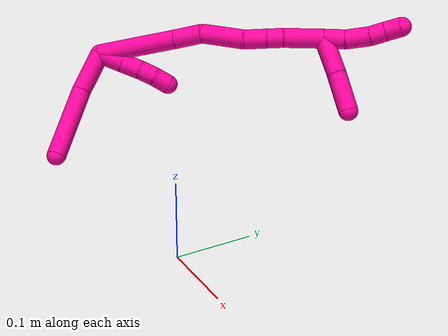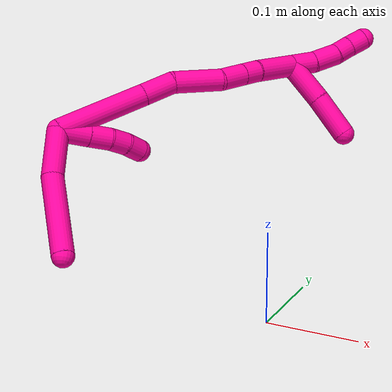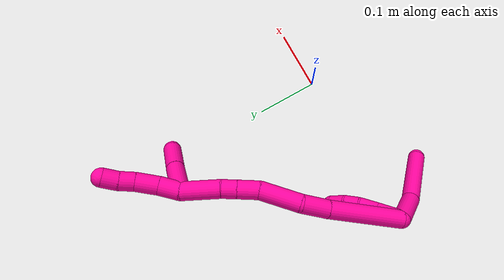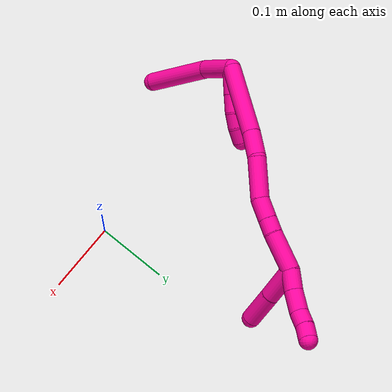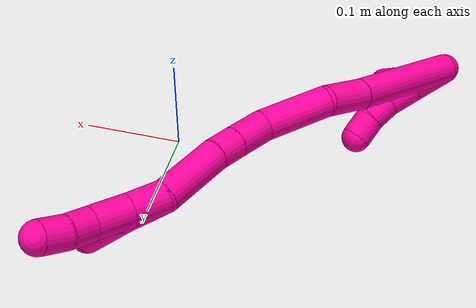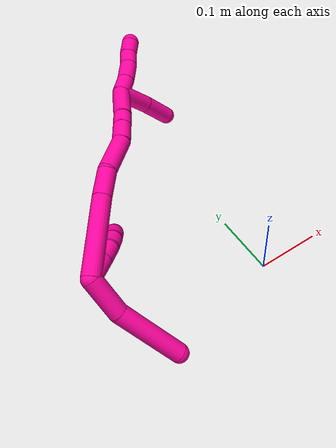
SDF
<sdf version="1.7">
 <world name="default">
  <model name="18">
   <static>0</static>
   <link name="18">
    <collision name="collision-cylinder-e_1_2_8">
     <pose>0.000643 -0.000397 -0.027251 3.12702 0.023571 2.034</pose>
     <geometry><cylinder><radius>0.0125</radius><length>0.054524</length></cylinder></geometry>
     <surface>
      <friction><ode><mu>1.16</mu><mu2>1.16</mu2><slip1>0</slip1><slip2>0</slip2></ode></friction>
      <contact><ode><kp>1e+06</kp><kd>1</kd><max_vel>0</max_vel><min_depth>0.001</min_depth></ode></contact>
     </surface>
    </collision>
    <visual name="visual-cylinder-e_1_2_8">
     <pose>0.000643 -0.000397 -0.027251 3.12702 0.023571 2.034</pose>
     <geometry><cylinder><radius>0.0125</radius><length>0.054524</length></cylinder></geometry>
     <material><ambient>1 0.007843 0.615686 1</ambient></material>
    </visual>
    <collision name="collision-cylinder-e_2_8_6">
     <pose>0.015453 -0.002251 -0.100067 3.10963 0.301322 2.93182</pose>
     <geometry><cylinder><radius>0.0125</radius><length>0.095476</length></cylinder></geometry>
     <surface>
      <friction><ode><mu>1.16</mu><mu2>1.16</mu2><slip1>0</slip1><slip2>0</slip2></ode></friction>
      <contact><ode><kp>1e+06</kp><kd>1</kd><max_vel>0</max_vel><min_depth>0.001</min_depth></ode></contact>
     </surface>
    </collision>
    <visual name="visual-cylinder-e_2_8_6">
     <pose>0.015453 -0.002251 -0.100067 3.10963 0.301322 2.93182</pose>
     <geometry><cylinder><radius>0.0125</radius><length>0.095476</length></cylinder></geometry>
     <material><ambient>1 0.007843 0.615686 1</ambient></material>
    </visual>
    <collision name="collision-cylinder-e_1_2_9">
     <pose>0.011048 0.013194 0.000812 -1.50933 0.696151 -0.657637</pose>
     <geometry><cylinder><radius>0.0125</radius><length>0.034455</length></cylinder></geometry>
     <surface>
      <friction><ode><mu>1.16</mu><mu2>1.16</mu2><slip1>0</slip1><slip2>0</slip2></ode></friction>
      <contact><ode><kp>1e+06</kp><kd>1</kd><max_vel>0</max_vel><min_depth>0.001</min_depth></ode></contact>
     </surface>
    </collision>
    <visual name="visual-cylinder-e_1_2_9">
     <pose>0.011048 0.013194 0.000812 -1.50933 0.696151 -0.657637</pose>
     <geometry><cylinder><radius>0.0125</radius><length>0.034455</length></cylinder></geometry>
     <material><ambient>1 0.007843 0.615686 1</ambient></material>
    </visual>
    <collision name="collision-cylinder-e_2_9_10">
     <pose>0.029901 0.035835 0.002402 -1.48864 0.6889 -0.638263</pose>
     <geometry><cylinder><radius>0.0125</radius><length>0.024558</length></cylinder></geometry>
     <surface>
      <friction><ode><mu>1.16</mu><mu2>1.16</mu2><slip1>0</slip1><slip2>0</slip2></ode></friction>
      <contact><ode><kp>1e+06</kp><kd>1</kd><max_vel>0</max_vel><min_depth>0.001</min_depth></ode></contact>
     </surface>
    </collision>
    <visual name="visual-cylinder-e_2_9_10">
     <pose>0.029901 0.035835 0.002402 -1.48864 0.6889 -0.638263</pose>
     <geometry><cylinder><radius>0.0125</radius><length>0.024558</length></cylinder></geometry>
     <material><ambient>1 0.007843 0.615686 1</ambient></material>
    </visual>
    <collision name="collision-cylinder-e_3_10_11">
     <pose>0.042513 0.054267 0.003365 -1.5502 0.491181 -0.481556</pose>
     <geometry><cylinder><radius>0.0125</radius><length>0.020384</length></cylinder></geometry>
     <surface>
      <friction><ode><mu>1.16</mu><mu2>1.16</mu2><slip1>0</slip1><slip2>0</slip2></ode></friction>
      <contact><ode><kp>1e+06</kp><kd>1</kd><max_vel>0</max_vel><min_depth>0.001</min_depth></ode></contact>
     </surface>
    </collision>
    <visual name="visual-cylinder-e_3_10_11">
     <pose>0.042513 0.054267 0.003365 -1.5502 0.491181 -0.481556</pose>
     <geometry><cylinder><radius>0.0125</radius><length>0.020384</length></cylinder></geometry>
     <material><ambient>1 0.007843 0.615686 1</ambient></material>
    </visual>
    <collision name="collision-cylinder-e_4_11_5">
     <pose>0.050279 0.07311 0.003121 -1.61422 0.291228 -0.303964</pose>
     <geometry><cylinder><radius>0.0125</radius><length>0.020603</length></cylinder></geometry>
     <surface>
      <friction><ode><mu>1.16</mu><mu2>1.16</mu2><slip1>0</slip1><slip2>0</slip2></ode></friction>
      <contact><ode><kp>1e+06</kp><kd>1</kd><max_vel>0</max_vel><min_depth>0.001</min_depth></ode></contact>
     </surface>
    </collision>
    <visual name="visual-cylinder-e_4_11_5">
     <pose>0.050279 0.07311 0.003121 -1.61422 0.291228 -0.303964</pose>
     <geometry><cylinder><radius>0.0125</radius><length>0.020603</length></cylinder></geometry>
     <material><ambient>1 0.007843 0.615686 1</ambient></material>
    </visual>
    <collision name="collision-cylinder-e_1_2_12">
     <pose>0.033425 0.028533 0.028633 -0.783652 0.690921 -0.295245</pose>
     <geometry><cylinder><radius>0.0125</radius><length>0.104905</length></cylinder></geometry>
     <surface>
      <friction><ode><mu>1.16</mu><mu2>1.16</mu2><slip1>0</slip1><slip2>0</slip2></ode></friction>
      <contact><ode><kp>1e+06</kp><kd>1</kd><max_vel>0</max_vel><min_depth>0.001</min_depth></ode></contact>
     </surface>
    </collision>
    <visual name="visual-cylinder-e_1_2_12">
     <pose>0.033425 0.028533 0.028633 -0.783652 0.690921 -0.295245</pose>
     <geometry><cylinder><radius>0.0125</radius><length>0.104905</length></cylinder></geometry>
     <material><ambient>1 0.007843 0.615686 1</ambient></material>
    </visual>
    <collision name="collision-cylinder-e_2_12_13">
     <pose>0.079663 0.066205 0.067185 -0.744464 0.759747 -0.309284</pose>
     <geometry><cylinder><radius>0.0125</radius><length>0.037205</length></cylinder></geometry>
     <surface>
      <friction><ode><mu>1.16</mu><mu2>1.16</mu2><slip1>0</slip1><slip2>0</slip2></ode></friction>
      <contact><ode><kp>1e+06</kp><kd>1</kd><max_vel>0</max_vel><min_depth>0.001</min_depth></ode></contact>
     </surface>
    </collision>
    <visual name="visual-cylinder-e_2_12_13">
     <pose>0.079663 0.066205 0.067185 -0.744464 0.759747 -0.309284</pose>
     <geometry><cylinder><radius>0.0125</radius><length>0.037205</length></cylinder></geometry>
     <material><ambient>1 0.007843 0.615686 1</ambient></material>
    </visual>
    <collision name="collision-cylinder-e_3_13_14">
     <pose>0.112612 0.093672 0.083993 -1.21131 0.799425 -0.569191</pose>
     <geometry><cylinder><radius>0.0125</radius><length>0.056172</length></cylinder></geometry>
     <surface>
      <friction><ode><mu>1.16</mu><mu2>1.16</mu2><slip1>0</slip1><slip2>0</slip2></ode></friction>
      <contact><ode><kp>1e+06</kp><kd>1</kd><max_vel>0</max_vel><min_depth>0.001</min_depth></ode></contact>
     </surface>
    </collision>
    <visual name="visual-cylinder-e_3_13_14">
     <pose>0.112612 0.093672 0.083993 -1.21131 0.799425 -0.569191</pose>
     <geometry><cylinder><radius>0.0125</radius><length>0.056172</length></cylinder></geometry>
     <material><ambient>1 0.007843 0.615686 1</ambient></material>
    </visual>
    <collision name="collision-cylinder-e_4_14_15">
     <pose>0.140533 0.122238 0.097578 -0.991514 0.566707 -0.312387</pose>
     <geometry><cylinder><radius>0.0125</radius><length>0.029002</length></cylinder></geometry>
     <surface>
      <friction><ode><mu>1.16</mu><mu2>1.16</mu2><slip1>0</slip1><slip2>0</slip2></ode></friction>
      <contact><ode><kp>1e+06</kp><kd>1</kd><max_vel>0</max_vel><min_depth>0.001</min_depth></ode></contact>
     </surface>
    </collision>
    <visual name="visual-cylinder-e_4_14_15">
     <pose>0.140533 0.122238 0.097578 -0.991514 0.566707 -0.312387</pose>
     <geometry><cylinder><radius>0.0125</radius><length>0.029002</length></cylinder></geometry>
     <material><ambient>1 0.007843 0.615686 1</ambient></material>
    </visual>
    <collision name="collision-cylinder-e_5_15_16">
     <pose>0.153696 0.13969 0.108938 -0.997007 0.559427 -0.310217</pose>
     <geometry><cylinder><radius>0.0125</radius><length>0.02027</length></cylinder></geometry>
     <surface>
      <friction><ode><mu>1.16</mu><mu2>1.16</mu2><slip1>0</slip1><slip2>0</slip2></ode></friction>
      <contact><ode><kp>1e+06</kp><kd>1</kd><max_vel>0</max_vel><min_depth>0.001</min_depth></ode></contact>
     </surface>
    </collision>
    <visual name="visual-cylinder-e_5_15_16">
     <pose>0.153696 0.13969 0.108938 -0.997007 0.559427 -0.310217</pose>
     <geometry><cylinder><radius>0.0125</radius><length>0.02027</length></cylinder></geometry>
     <material><ambient>1 0.007843 0.615686 1</ambient></material>
    </visual>
    <collision name="collision-cylinder-e_6_16_1">
     <pose>0.170495 0.167698 0.124775 -1.07769 0.450593 -0.272347</pose>
     <geometry><cylinder><radius>0.0125</radius><length>0.052446</length></cylinder></geometry>
     <surface>
      <friction><ode><mu>1.16</mu><mu2>1.16</mu2><slip1>0</slip1><slip2>0</slip2></ode></friction>
      <contact><ode><kp>1e+06</kp><kd>1</kd><max_vel>0</max_vel><min_depth>0.001</min_depth></ode></contact>
     </surface>
    </collision>
    <visual name="visual-cylinder-e_6_16_1">
     <pose>0.170495 0.167698 0.124775 -1.07769 0.450593 -0.272347</pose>
     <geometry><cylinder><radius>0.0125</radius><length>0.052446</length></cylinder></geometry>
     <material><ambient>1 0.007843 0.615686 1</ambient></material>
    </visual>
    <collision name="collision-cylinder-e_1_1_17">
     <pose>0.191742 0.197393 0.140858 -1.06684 0.768454 -0.468744</pose>
     <geometry><cylinder><radius>0.0125</radius><length>0.028279</length></cylinder></geometry>
     <surface>
      <friction><ode><mu>1.16</mu><mu2>1.16</mu2><slip1>0</slip1><slip2>0</slip2></ode></friction>
      <contact><ode><kp>1e+06</kp><kd>1</kd><max_vel>0</max_vel><min_depth>0.001</min_depth></ode></contact>
     </surface>
    </collision>
    <visual name="visual-cylinder-e_1_1_17">
     <pose>0.191742 0.197393 0.140858 -1.06684 0.768454 -0.468744</pose>
     <geometry><cylinder><radius>0.0125</radius><length>0.028279</length></cylinder></geometry>
     <material><ambient>1 0.007843 0.615686 1</ambient></material>
    </visual>
    <collision name="collision-cylinder-e_2_17_18">
     <pose>0.211646 0.214992 0.153447 -0.847391 0.715133 -0.333885</pose>
     <geometry><cylinder><radius>0.0125</radius><length>0.030735</length></cylinder></geometry>
     <surface>
      <friction><ode><mu>1.16</mu><mu2>1.16</mu2><slip1>0</slip1><slip2>0</slip2></ode></friction>
      <contact><ode><kp>1e+06</kp><kd>1</kd><max_vel>0</max_vel><min_depth>0.001</min_depth></ode></contact>
     </surface>
    </collision>
    <visual name="visual-cylinder-e_2_17_18">
     <pose>0.211646 0.214992 0.153447 -0.847391 0.715133 -0.333885</pose>
     <geometry><cylinder><radius>0.0125</radius><length>0.030735</length></cylinder></geometry>
     <material><ambient>1 0.007843 0.615686 1</ambient></material>
    </visual>
    <collision name="collision-cylinder-e_3_18_19">
     <pose>0.227422 0.228837 0.167627 -0.669863 0.602186 -0.215324</pose>
     <geometry><cylinder><radius>0.0125</radius><length>0.020121</length></cylinder></geometry>
     <surface>
      <friction><ode><mu>1.16</mu><mu2>1.16</mu2><slip1>0</slip1><slip2>0</slip2></ode></friction>
      <contact><ode><kp>1e+06</kp><kd>1</kd><max_vel>0</max_vel><min_depth>0.001</min_depth></ode></contact>
     </surface>
    </collision>
    <visual name="visual-cylinder-e_3_18_19">
     <pose>0.227422 0.228837 0.167627 -0.669863 0.602186 -0.215324</pose>
     <geometry><cylinder><radius>0.0125</radius><length>0.020121</length></cylinder></geometry>
     <material><ambient>1 0.007843 0.615686 1</ambient></material>
    </visual>
    <collision name="collision-cylinder-e_4_19_4">
     <pose>0.240322 0.238426 0.180229 -0.629163 0.761842 -0.259162</pose>
     <geometry><cylinder><radius>0.0125</radius><length>0.020865</length></cylinder></geometry>
     <surface>
      <friction><ode><mu>1.16</mu><mu2>1.16</mu2><slip1>0</slip1><slip2>0</slip2></ode></friction>
      <contact><ode><kp>1e+06</kp><kd>1</kd><max_vel>0</max_vel><min_depth>0.001</min_depth></ode></contact>
     </surface>
    </collision>
    <visual name="visual-cylinder-e_4_19_4">
     <pose>0.240322 0.238426 0.180229 -0.629163 0.761842 -0.259162</pose>
     <geometry><cylinder><radius>0.0125</radius><length>0.020865</length></cylinder></geometry>
     <material><ambient>1 0.007843 0.615686 1</ambient></material>
    </visual>
    <collision name="collision-cylinder-e_1_1_20">
     <pose>0.194992 0.200342 0.118034 -2.55716 0.546881 -1.50076</pose>
     <geometry><cylinder><radius>0.0125</radius><length>0.050294</length></cylinder></geometry>
     <surface>
      <friction><ode><mu>1.16</mu><mu2>1.16</mu2><slip1>0</slip1><slip2>0</slip2></ode></friction>
      <contact><ode><kp>1e+06</kp><kd>1</kd><max_vel>0</max_vel><min_depth>0.001</min_depth></ode></contact>
     </surface>
    </collision>
    <visual name="visual-cylinder-e_1_1_20">
     <pose>0.194992 0.200342 0.118034 -2.55716 0.546881 -1.50076</pose>
     <geometry><cylinder><radius>0.0125</radius><length>0.050294</length></cylinder></geometry>
     <material><ambient>1 0.007843 0.615686 1</ambient></material>
    </visual>
    <collision name="collision-cylinder-e_2_20_3">
     <pose>0.219755 0.224012 0.081642 -2.57253 0.489508 -1.41361</pose>
     <geometry><cylinder><radius>0.0125</radius><length>0.049706</length></cylinder></geometry>
     <surface>
      <friction><ode><mu>1.16</mu><mu2>1.16</mu2><slip1>0</slip1><slip2>0</slip2></ode></friction>
      <contact><ode><kp>1e+06</kp><kd>1</kd><max_vel>0</max_vel><min_depth>0.001</min_depth></ode></contact>
     </surface>
    </collision>
    <visual name="visual-cylinder-e_2_20_3">
     <pose>0.219755 0.224012 0.081642 -2.57253 0.489508 -1.41361</pose>
     <geometry><cylinder><radius>0.0125</radius><length>0.049706</length></cylinder></geometry>
     <material><ambient>1 0.007843 0.615686 1</ambient></material>
    </visual>
    <collision name="collision-sphere-3">
     <pose>0.231441 0.235831 0.063165 0 -0 0</pose>
     <geometry><sphere><radius>0.0125</radius></sphere></geometry>
     <surface>
      <friction><ode><mu>1.16</mu><mu2>1.16</mu2><slip1>0</slip1><slip2>0</slip2></ode></friction>
      <contact><ode><kp>1e+06</kp><kd>1</kd><max_vel>0</max_vel><min_depth>0.001</min_depth></ode></contact>
     </surface>
    </collision>
    <visual name="visual-sphere-3">
     <pose>0.231441 0.235831 0.063165 0 -0 0</pose>
     <geometry><sphere><radius>0.0125</radius></sphere></geometry>
     <material><ambient>1 0.007843 0.615686 1</ambient></material>
    </visual>
    <collision name="collision-sphere-20">
     <pose>0.20807 0.212193 0.10012 0 -0 0</pose>
     <geometry><sphere><radius>0.0125</radius></sphere></geometry>
     <surface>
      <friction><ode><mu>1.16</mu><mu2>1.16</mu2><slip1>0</slip1><slip2>0</slip2></ode></friction>
      <contact><ode><kp>1e+06</kp><kd>1</kd><max_vel>0</max_vel><min_depth>0.001</min_depth></ode></contact>
     </surface>
    </collision>
    <visual name="visual-sphere-20">
     <pose>0.20807 0.212193 0.10012 0 -0 0</pose>
     <geometry><sphere><radius>0.0125</radius></sphere></geometry>
     <material><ambient>1 0.007843 0.615686 1</ambient></material>
    </visual>
    <collision name="collision-sphere-4">
     <pose>0.247523 0.242868 0.186332 0 -0 0</pose>
     <geometry><sphere><radius>0.0125</radius></sphere></geometry>
     <surface>
      <friction><ode><mu>1.16</mu><mu2>1.16</mu2><slip1>0</slip1><slip2>0</slip2></ode></friction>
      <contact><ode><kp>1e+06</kp><kd>1</kd><max_vel>0</max_vel><min_depth>0.001</min_depth></ode></contact>
     </surface>
    </collision>
    <visual name="visual-sphere-4">
     <pose>0.247523 0.242868 0.186332 0 -0 0</pose>
     <geometry><sphere><radius>0.0125</radius></sphere></geometry>
     <material><ambient>1 0.007843 0.615686 1</ambient></material>
    </visual>
    <collision name="collision-sphere-11">
     <pose>0.047321 0.063252 0.00355 0 -0 0</pose>
     <geometry><sphere><radius>0.0125</radius></sphere></geometry>
     <surface>
      <friction><ode><mu>1.16</mu><mu2>1.16</mu2><slip1>0</slip1><slip2>0</slip2></ode></friction>
      <contact><ode><kp>1e+06</kp><kd>1</kd><max_vel>0</max_vel><min_depth>0.001</min_depth></ode></contact>
     </surface>
    </collision>
    <visual name="visual-sphere-11">
     <pose>0.047321 0.063252 0.00355 0 -0 0</pose>
     <geometry><sphere><radius>0.0125</radius></sphere></geometry>
     <material><ambient>1 0.007843 0.615686 1</ambient></material>
    </visual>
    <collision name="collision-sphere-10">
     <pose>0.037706 0.045281 0.00318 0 -0 0</pose>
     <geometry><sphere><radius>0.0125</radius></sphere></geometry>
     <surface>
      <friction><ode><mu>1.16</mu><mu2>1.16</mu2><slip1>0</slip1><slip2>0</slip2></ode></friction>
      <contact><ode><kp>1e+06</kp><kd>1</kd><max_vel>0</max_vel><min_depth>0.001</min_depth></ode></contact>
     </surface>
    </collision>
    <visual name="visual-sphere-10">
     <pose>0.037706 0.045281 0.00318 0 -0 0</pose>
     <geometry><sphere><radius>0.0125</radius></sphere></geometry>
     <material><ambient>1 0.007843 0.615686 1</ambient></material>
    </visual>
    <collision name="collision-sphere-6">
     <pose>0.029621 -0.003708 -0.145631 0 -0 0</pose>
     <geometry><sphere><radius>0.0125</radius></sphere></geometry>
     <surface>
      <friction><ode><mu>1.16</mu><mu2>1.16</mu2><slip1>0</slip1><slip2>0</slip2></ode></friction>
      <contact><ode><kp>1e+06</kp><kd>1</kd><max_vel>0</max_vel><min_depth>0.001</min_depth></ode></contact>
     </surface>
    </collision>
    <visual name="visual-sphere-6">
     <pose>0.029621 -0.003708 -0.145631 0 -0 0</pose>
     <geometry><sphere><radius>0.0125</radius></sphere></geometry>
     <material><ambient>1 0.007843 0.615686 1</ambient></material>
    </visual>
    <collision name="collision-sphere-9">
     <pose>0.022095 0.026388 0.001624 0 -0 0</pose>
     <geometry><sphere><radius>0.0125</radius></sphere></geometry>
     <surface>
      <friction><ode><mu>1.16</mu><mu2>1.16</mu2><slip1>0</slip1><slip2>0</slip2></ode></friction>
      <contact><ode><kp>1e+06</kp><kd>1</kd><max_vel>0</max_vel><min_depth>0.001</min_depth></ode></contact>
     </surface>
    </collision>
    <visual name="visual-sphere-9">
     <pose>0.022095 0.026388 0.001624 0 -0 0</pose>
     <geometry><sphere><radius>0.0125</radius></sphere></geometry>
     <material><ambient>1 0.007843 0.615686 1</ambient></material>
    </visual>
    <collision name="collision-sphere-2">
     <geometry><sphere><radius>0.0125</radius></sphere></geometry>
     <surface>
      <friction><ode><mu>1.16</mu><mu2>1.16</mu2><slip1>0</slip1><slip2>0</slip2></ode></friction>
      <contact><ode><kp>1e+06</kp><kd>1</kd><max_vel>0</max_vel><min_depth>0.001</min_depth></ode></contact>
     </surface>
    </collision>
    <visual name="visual-sphere-2">
     <geometry><sphere><radius>0.0125</radius></sphere></geometry>
     <material><ambient>1 0.007843 0.615686 1</ambient></material>
    </visual>
    <collision name="collision-sphere-19">
     <pose>0.233121 0.233984 0.174126 0 -0 0</pose>
     <geometry><sphere><radius>0.0125</radius></sphere></geometry>
     <surface>
      <friction><ode><mu>1.16</mu><mu2>1.16</mu2><slip1>0</slip1><slip2>0</slip2></ode></friction>
      <contact><ode><kp>1e+06</kp><kd>1</kd><max_vel>0</max_vel><min_depth>0.001</min_depth></ode></contact>
     </surface>
    </collision>
    <visual name="visual-sphere-19">
     <pose>0.233121 0.233984 0.174126 0 -0 0</pose>
     <geometry><sphere><radius>0.0125</radius></sphere></geometry>
     <material><ambient>1 0.007843 0.615686 1</ambient></material>
    </visual>
    <collision name="collision-sphere-8">
     <pose>0.001285 -0.000794 -0.054503 0 -0 0</pose>
     <geometry><sphere><radius>0.0125</radius></sphere></geometry>
     <surface>
      <friction><ode><mu>1.16</mu><mu2>1.16</mu2><slip1>0</slip1><slip2>0</slip2></ode></friction>
      <contact><ode><kp>1e+06</kp><kd>1</kd><max_vel>0</max_vel><min_depth>0.001</min_depth></ode></contact>
     </surface>
    </collision>
    <visual name="visual-sphere-8">
     <pose>0.001285 -0.000794 -0.054503 0 -0 0</pose>
     <geometry><sphere><radius>0.0125</radius></sphere></geometry>
     <material><ambient>1 0.007843 0.615686 1</ambient></material>
    </visual>
    <collision name="collision-sphere-5">
     <pose>0.053236 0.082969 0.002693 0 -0 0</pose>
     <geometry><sphere><radius>0.0125</radius></sphere></geometry>
     <surface>
      <friction><ode><mu>1.16</mu><mu2>1.16</mu2><slip1>0</slip1><slip2>0</slip2></ode></friction>
      <contact><ode><kp>1e+06</kp><kd>1</kd><max_vel>0</max_vel><min_depth>0.001</min_depth></ode></contact>
     </surface>
    </collision>
    <visual name="visual-sphere-5">
     <pose>0.053236 0.082969 0.002693 0 -0 0</pose>
     <geometry><sphere><radius>0.0125</radius></sphere></geometry>
     <material><ambient>1 0.007843 0.615686 1</ambient></material>
    </visual>
    <collision name="collision-sphere-12">
     <pose>0.06685 0.057067 0.057266 0 -0 0</pose>
     <geometry><sphere><radius>0.0125</radius></sphere></geometry>
     <surface>
      <friction><ode><mu>1.16</mu><mu2>1.16</mu2><slip1>0</slip1><slip2>0</slip2></ode></friction>
      <contact><ode><kp>1e+06</kp><kd>1</kd><max_vel>0</max_vel><min_depth>0.001</min_depth></ode></contact>
     </surface>
    </collision>
    <visual name="visual-sphere-12">
     <pose>0.06685 0.057067 0.057266 0 -0 0</pose>
     <geometry><sphere><radius>0.0125</radius></sphere></geometry>
     <material><ambient>1 0.007843 0.615686 1</ambient></material>
    </visual>
    <collision name="collision-sphere-13">
     <pose>0.092475 0.075344 0.077105 0 -0 0</pose>
     <geometry><sphere><radius>0.0125</radius></sphere></geometry>
     <surface>
      <friction><ode><mu>1.16</mu><mu2>1.16</mu2><slip1>0</slip1><slip2>0</slip2></ode></friction>
      <contact><ode><kp>1e+06</kp><kd>1</kd><max_vel>0</max_vel><min_depth>0.001</min_depth></ode></contact>
     </surface>
    </collision>
    <visual name="visual-sphere-13">
     <pose>0.092475 0.075344 0.077105 0 -0 0</pose>
     <geometry><sphere><radius>0.0125</radius></sphere></geometry>
     <material><ambient>1 0.007843 0.615686 1</ambient></material>
    </visual>
    <collision name="collision-sphere-14">
     <pose>0.132748 0.112 0.090881 0 -0 0</pose>
     <geometry><sphere><radius>0.0125</radius></sphere></geometry>
     <surface>
      <friction><ode><mu>1.16</mu><mu2>1.16</mu2><slip1>0</slip1><slip2>0</slip2></ode></friction>
      <contact><ode><kp>1e+06</kp><kd>1</kd><max_vel>0</max_vel><min_depth>0.001</min_depth></ode></contact>
     </surface>
    </collision>
    <visual name="visual-sphere-14">
     <pose>0.132748 0.112 0.090881 0 -0 0</pose>
     <geometry><sphere><radius>0.0125</radius></sphere></geometry>
     <material><ambient>1 0.007843 0.615686 1</ambient></material>
    </visual>
    <collision name="collision-sphere-15">
     <pose>0.148318 0.132476 0.104275 0 -0 0</pose>
     <geometry><sphere><radius>0.0125</radius></sphere></geometry>
     <surface>
      <friction><ode><mu>1.16</mu><mu2>1.16</mu2><slip1>0</slip1><slip2>0</slip2></ode></friction>
      <contact><ode><kp>1e+06</kp><kd>1</kd><max_vel>0</max_vel><min_depth>0.001</min_depth></ode></contact>
     </surface>
    </collision>
    <visual name="visual-sphere-15">
     <pose>0.148318 0.132476 0.104275 0 -0 0</pose>
     <geometry><sphere><radius>0.0125</radius></sphere></geometry>
     <material><ambient>1 0.007843 0.615686 1</ambient></material>
    </visual>
    <collision name="collision-sphere-16">
     <pose>0.159075 0.146904 0.1136 0 -0 0</pose>
     <geometry><sphere><radius>0.0125</radius></sphere></geometry>
     <surface>
      <friction><ode><mu>1.16</mu><mu2>1.16</mu2><slip1>0</slip1><slip2>0</slip2></ode></friction>
      <contact><ode><kp>1e+06</kp><kd>1</kd><max_vel>0</max_vel><min_depth>0.001</min_depth></ode></contact>
     </surface>
    </collision>
    <visual name="visual-sphere-16">
     <pose>0.159075 0.146904 0.1136 0 -0 0</pose>
     <geometry><sphere><radius>0.0125</radius></sphere></geometry>
     <material><ambient>1 0.007843 0.615686 1</ambient></material>
    </visual>
    <collision name="collision-sphere-1">
     <pose>0.181915 0.188491 0.135949 0 -0 0</pose>
     <geometry><sphere><radius>0.0125</radius></sphere></geometry>
     <surface>
      <friction><ode><mu>1.16</mu><mu2>1.16</mu2><slip1>0</slip1><slip2>0</slip2></ode></friction>
      <contact><ode><kp>1e+06</kp><kd>1</kd><max_vel>0</max_vel><min_depth>0.001</min_depth></ode></contact>
     </surface>
    </collision>
    <visual name="visual-sphere-1">
     <pose>0.181915 0.188491 0.135949 0 -0 0</pose>
     <geometry><sphere><radius>0.0125</radius></sphere></geometry>
     <material><ambient>1 0.007843 0.615686 1</ambient></material>
    </visual>
    <collision name="collision-sphere-18">
     <pose>0.221723 0.223689 0.161127 0 -0 0</pose>
     <geometry><sphere><radius>0.0125</radius></sphere></geometry>
     <surface>
      <friction><ode><mu>1.16</mu><mu2>1.16</mu2><slip1>0</slip1><slip2>0</slip2></ode></friction>
      <contact><ode><kp>1e+06</kp><kd>1</kd><max_vel>0</max_vel><min_depth>0.001</min_depth></ode></contact>
     </surface>
    </collision>
    <visual name="visual-sphere-18">
     <pose>0.221723 0.223689 0.161127 0 -0 0</pose>
     <geometry><sphere><radius>0.0125</radius></sphere></geometry>
     <material><ambient>1 0.007843 0.615686 1</ambient></material>
    </visual>
    <collision name="collision-sphere-17">
     <pose>0.20157 0.206295 0.145767 0 -0 0</pose>
     <geometry><sphere><radius>0.0125</radius></sphere></geometry>
     <surface>
      <friction><ode><mu>1.16</mu><mu2>1.16</mu2><slip1>0</slip1><slip2>0</slip2></ode></friction>
      <contact><ode><kp>1e+06</kp><kd>1</kd><max_vel>0</max_vel><min_depth>0.001</min_depth></ode></contact>
     </surface>
    </collision>
    <visual name="visual-sphere-17">
     <pose>0.20157 0.206295 0.145767 0 -0 0</pose>
     <geometry><sphere><radius>0.0125</radius></sphere></geometry>
     <material><ambient>1 0.007843 0.615686 1</ambient></material>
    </visual>
    <inertial>
     <pose>0.100939 0.096774 0.049081 0 -0 0</pose>
     <mass>0.75</mass>
     <inertia><ixx>3.8e-05</ixx><ixy>0</ixy><ixz>0</ixz><iyy>0.0002</iyy><iyz>0</iyz><izz>-0.000244</izz></inertia>
    </inertial>
   </link>
   <pose>-0.255443 0.018659 0.168137 -0.660111 -0.245755 0.018958</pose>
  </model>
 </world>
</sdf>
